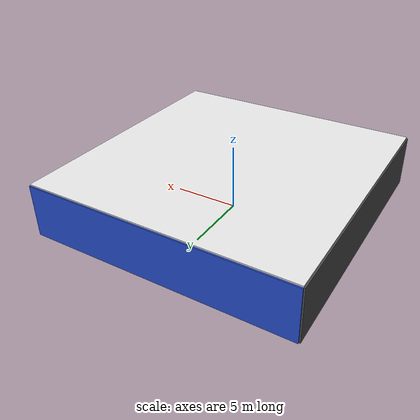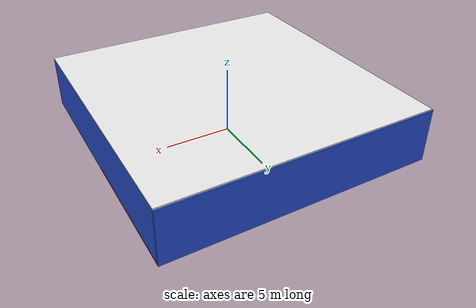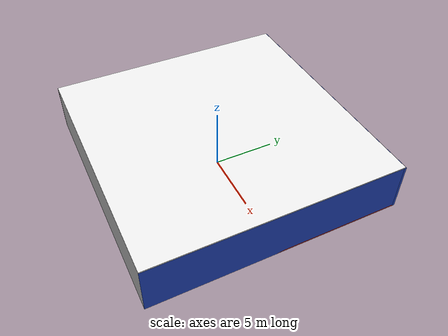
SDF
<sdf version="1.4">
 <world name="default">
  <physics type="ode">
   <max_step_size>0.001</max_step_size>
   <real_time_factor>1</real_time_factor>
   <real_time_update_rate>1000</real_time_update_rate>
   <gravity>0 0 -9.8</gravity>
  </physics>
  <scene><ambient>0.4 0.4 0.4 1</ambient><background>0.7 0.7 0.7 1</background><shadows>1</shadows></scene>
  <model name="Surrounding">
   <static>1</static>
   <link name="Ceiling">
    <collision name="Ceiling_Collision"><geometry><box><size>20 20 0.1</size></box></geometry></collision>
    <visual name="Ceiling_Visual">
     <geometry><box><size>20 20 0.1</size></box></geometry>
     <material>
      <script><uri>file://media/materials/scripts/gazebo.material</uri><name>Gazebo/WhiteGlow</name></script>
     </material>
    </visual>
    <pose>0 0 4.05 0 0 0</pose>
   </link>
   <link name="Wall_South">
    <collision name="Wall_South_Collision">
     <geometry><box><size>20 0 4</size></box></geometry>
     <pose>0 0 2 0 -0 0</pose>
    </collision>
    <visual name="Wall_South_Visual">
     <pose>0 0 2 0 -0 0</pose>
     <geometry><box><size>20 0 4</size></box></geometry>
     <material>
      <script><uri>file://media/materials/scripts/gazebo.material</uri><name>Gazebo/CloudySky</name></script>
     </material>
    </visual>
    <velocity_decay><linear>0</linear><angular>0</angular></velocity_decay>
    <pose>0 -10 0 0 -0 0</pose>
   </link>
   <link name="Wall_East">
    <collision name="Wall_21_Collision">
     <geometry><box><size>20 0 4</size></box></geometry>
     <pose>0 0 2 0 -0 0</pose>
    </collision>
    <visual name="Wall_21_Visual">
     <pose>0 0 2 0 -0 0</pose>
     <geometry><box><size>20 0 4</size></box></geometry>
     <material>
      <script><uri>file://media/materials/scripts/gazebo.material</uri><name>Gazebo/Blue</name></script>
     </material>
    </visual>
    <velocity_decay><linear>0</linear><angular>0</angular></velocity_decay>
    <pose>10 0 0 0 -0 1.5708</pose>
   </link>
   <link name="Wall_North">
    <collision name="Wall_22_Collision">
     <geometry><box><size>20 0.2 4</size></box></geometry>
     <pose>0 0 2 0 -0 0</pose>
    </collision>
    <visual name="Wall_22_Visual">
     <pose>0 0 2 0 -0 0</pose>
     <geometry><box><size>20 0.2 4</size></box></geometry>
     <material>
      <script><uri>file://media/materials/scripts/gazebo.material</uri><name>Gazebo/Blue</name></script>
     </material>
    </visual>
    <velocity_decay><linear>0</linear><angular>0</angular></velocity_decay>
    <pose>0 10 0 0 -0 0</pose>
   </link>
   <link name="Wall_West">
    <collision name="Wall_23_Collision">
     <geometry><box><size>20 0.2 4</size></box></geometry>
     <pose>0 0 2 0 -0 0</pose>
    </collision>
    <visual name="Wall_23_Visual">
     <pose>0 0 2 0 -0 0</pose>
     <geometry><box><size>20 0.2 4</size></box></geometry>
     <material>
      <script><uri>file://media/materials/scripts/gazebo.material</uri><name>Gazebo/Road</name></script>
     </material>
    </visual>
    <velocity_decay><linear>0</linear><angular>0</angular></velocity_decay>
    <pose>-10 0 0 0 0 -1.5708</pose>
   </link>
   <link name="Ground_link">
    <collision name="collision">
     <pose>0 0 .05 0 -0 0</pose>
     <geometry><box><size>20 20 0.1</size></box></geometry>
    </collision>
    <visual name="visual">
     <pose>0 0 .05 0 -0 0</pose>
     <geometry><box><size>20 20 0.1</size></box></geometry>
     <material>
      <script><uri>file://media/materials/scripts/gazebo.material</uri><name>Gazebo/RedBright</name></script>
     </material>
    </visual>
   </link>
   <static>1</static>
  </model>
  <spherical_coordinates>
   <surface_model>EARTH_WGS84</surface_model>
   <latitude_deg>0</latitude_deg>
   <longitude_deg>0</longitude_deg>
   <elevation>0</elevation>
   <heading_deg>0</heading_deg>
  </spherical_coordinates>
  <light name="lightball_0" type="diffuse">
   <diffuse>0.8 0.8 0.8 1</diffuse>
   <specular>0.2 0.2 0.2 1</specular>
   <attenuation>
    <range>100</range>
    <constant>0.7</constant>
    <linear>0.01</linear>
    <quadratic>0.001</quadratic>
   </attenuation>
   <direction>-0.5 0.1 -0.9</direction>
   <pose>-3.99693405494 -4.84539345829 0.552466709526 0 0 0</pose>
  </light>
  <light name="lightball_1" type="diffuse">
   <diffuse>0.8 0.8 0.8 1</diffuse>
   <specular>0.2 0.2 0.2 1</specular>
   <attenuation>
    <range>100</range>
    <constant>0.7</constant>
    <linear>0.01</linear>
    <quadratic>0.001</quadratic>
   </attenuation>
   <direction>-0.5 0.1 -0.9</direction>
   <pose>6.86566617927 9.17961633493 2.6431141255 0 0 0</pose>
  </light>
  <light name="lightball_2" type="diffuse">
   <diffuse>0.8 0.8 0.8 1</diffuse>
   <specular>0.2 0.2 0.2 1</specular>
   <attenuation>
    <range>100</range>
    <constant>0.7</constant>
    <linear>0.01</linear>
    <quadratic>0.001</quadratic>
   </attenuation>
   <direction>-0.5 0.1 -0.9</direction>
   <pose>-0.314899328549 -1.05455505368 1.57880975803 0 0 0</pose>
  </light>
  <light name="lightball_3" type="diffuse">
   <diffuse>0.8 0.8 0.8 1</diffuse>
   <specular>0.2 0.2 0.2 1</specular>
   <attenuation>
    <range>100</range>
    <constant>0.7</constant>
    <linear>0.01</linear>
    <quadratic>0.001</quadratic>
   </attenuation>
   <direction>-0.5 0.1 -0.9</direction>
   <pose>9.1998699381 -9.86850305363 1.36179266694 0 0 0</pose>
  </light>
  <light name="lightball_4" type="diffuse">
   <diffuse>0.8 0.8 0.8 1</diffuse>
   <specular>0.2 0.2 0.2 1</specular>
   <attenuation>
    <range>100</range>
    <constant>0.7</constant>
    <linear>0.01</linear>
    <quadratic>0.001</quadratic>
   </attenuation>
   <direction>-0.5 0.1 -0.9</direction>
   <pose>2.7615441938 2.64069729641 2.78959799678 0 0 0</pose>
  </light>
  <light name="lightball_5" type="diffuse">
   <diffuse>0.8 0.8 0.8 1</diffuse>
   <specular>0.2 0.2 0.2 1</specular>
   <attenuation>
    <range>100</range>
    <constant>0.7</constant>
    <linear>0.01</linear>
    <quadratic>0.001</quadratic>
   </attenuation>
   <direction>-0.5 0.1 -0.9</direction>
   <pose>9.68423747674 9.34819925103 1.14945459488 0 0 0</pose>
  </light>
  <light name="lightball_6" type="diffuse">
   <diffuse>0.8 0.8 0.8 1</diffuse>
   <specular>0.2 0.2 0.2 1</specular>
   <attenuation>
    <range>100</range>
    <constant>0.7</constant>
    <linear>0.01</linear>
    <quadratic>0.001</quadratic>
   </attenuation>
   <direction>-0.5 0.1 -0.9</direction>
   <pose>9.78262979854 -5.45425102719 1.60222609231 0 0 0</pose>
  </light>
  <light name="lightball_7" type="diffuse">
   <diffuse>0.8 0.8 0.8 1</diffuse>
   <specular>0.2 0.2 0.2 1</specular>
   <attenuation>
    <range>100</range>
    <constant>0.7</constant>
    <linear>0.01</linear>
    <quadratic>0.001</quadratic>
   </attenuation>
   <direction>-0.5 0.1 -0.9</direction>
   <pose>9.97380570993 3.48590625243 1.96160671135 0 0 0</pose>
  </light>
  <light name="lightball_8" type="diffuse">
   <diffuse>0.8 0.8 0.8 1</diffuse>
   <specular>0.2 0.2 0.2 1</specular>
   <attenuation>
    <range>100</range>
    <constant>0.7</constant>
    <linear>0.01</linear>
    <quadratic>0.001</quadratic>
   </attenuation>
   <direction>-0.5 0.1 -0.9</direction>
   <pose>6.11073991207 9.57167618406 3.59303687652 0 0 0</pose>
  </light>
  <light name="lightball_9" type="diffuse">
   <diffuse>0.8 0.8 0.8 1</diffuse>
   <specular>0.2 0.2 0.2 1</specular>
   <attenuation>
    <range>100</range>
    <constant>0.7</constant>
    <linear>0.01</linear>
    <quadratic>0.001</quadratic>
   </attenuation>
   <direction>-0.5 0.1 -0.9</direction>
   <pose>8.98401318141 3.16713348478 3.27421314061 0 0 0</pose>
  </light>
  <include><uri>model://table</uri><pose>-6.88036075907 -7.24846764672 0 0 0 1.3565492893</pose></include>
  <include><uri>model://cabinet</uri><pose>-4.21726327584 6.73992940268 0 0 0 1.31748792531</pose></include>
  <include>
   <uri>model://robocup_3Dsim_goal</uri>
   <pose>1.56789176652 4.88908125103 0 0 0 0.215617259556</pose>
  </include>
  <include><uri>model://cabinet</uri><pose>2.05946845794 7.08588621937 0 0 0 1.68864144635</pose></include>
  <include>
   <uri>model://construction_cone</uri>
   <pose>7.49995589955 -0.875197701904 0 0 0 0.390050625607</pose>
  </include>
 </world>
</sdf>

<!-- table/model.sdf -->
<sdf version="1.5">
  <model name="table">
    <static>true</static>
    <link name="link">
      <collision name="surface">
        <pose>0 0 1.0 0 0 0</pose>
        <geometry>
          <box>
            <size>1.5 0.8 0.03</size>
          </box>
        </geometry>
        <surface>
          <friction>
            <ode>
              <mu>0.6</mu>
              <mu2>0.6</mu2>
            </ode>
          </friction>
        </surface>
      </collision>
      <visual name="visual1">
        <pose>0 0 1.0 0 0 0</pose>
        <geometry>
          <box>
            <size>1.5 0.8 0.03</size>
          </box>
        </geometry>
        <material>
          <script>
            <uri>model://media/materials/scripts/gazebo.material</uri>
            <name>Gazebo/Wood</name>
          </script>
        </material>
      </visual>
      <collision name="front_left_leg">
        <pose>0.68 0.38 0.5 0 0 0</pose>
        <geometry>
          <cylinder>
            <radius>0.02</radius>
            <length>1.0</length>
          </cylinder>
        </geometry>
      </collision>
      <visual name="front_left_leg">
        <pose>0.68 0.38 0.5 0 0 0</pose>
        <geometry>
          <cylinder>
            <radius>0.02</radius>
            <length>1.0</length>
          </cylinder>
        </geometry>
        <material>
          <script>
            <uri>model://media/materials/scripts/gazebo.material</uri>
            <name>Gazebo/Grey</name>
          </script>
        </material>
      </visual>
      <collision name="front_right_leg">
        <pose>0.68 -0.38 0.5 0 0 0</pose>
        <geometry>
          <cylinder>
            <radius>0.02</radius>
            <length>1.0</length>
          </cylinder>
        </geometry>
      </collision>
      <visual name="front_right_leg">
        <pose>0.68 -0.38 0.5 0 0 0</pose>
        <geometry>
          <cylinder>
            <radius>0.02</radius>
            <length>1.0</length>
          </cylinder>
        </geometry>
        <material>
          <script>
            <uri>model://media/materials/scripts/gazebo.material</uri>
            <name>Gazebo/Grey</name>
          </script>
        </material>
      </visual>
      <collision name="back_right_leg">
        <pose>-0.68 -0.38 0.5 0 0 0</pose>
        <geometry>
          <cylinder>
            <radius>0.02</radius>
            <length>1.0</length>
          </cylinder>
        </geometry>
      </collision>
      <visual name="back_right_leg">
        <pose>-0.68 -0.38 0.5 0 0 0</pose>
        <geometry>
          <cylinder>
            <radius>0.02</radius>
            <length>1.0</length>
          </cylinder>
        </geometry>
        <material>
          <script>
            <uri>model://media/materials/scripts/gazebo.material</uri>
            <name>Gazebo/Grey</name>
          </script>
        </material>
      </visual>
      <collision name="back_left_leg">
        <pose>-0.68 0.38 0.5 0 0 0</pose>
        <geometry>
          <cylinder>
            <radius>0.02</radius>
            <length>1.0</length>
          </cylinder>
        </geometry>
      </collision>
      <visual name="back_left_leg">
        <pose>-0.68 0.38 0.5 0 0 0</pose>
        <geometry>
          <cylinder>
            <radius>0.02</radius>
            <length>1.0</length>
          </cylinder>
        </geometry>
        <material>
          <script>
            <uri>model://media/materials/scripts/gazebo.material</uri>
            <name>Gazebo/Grey</name>
          </script>
        </material>
      </visual>
    </link>
  </model>
</sdf>

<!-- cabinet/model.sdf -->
<sdf version="1.5">
  <model name="cabinet">
    <static>true</static>
    <link name="cabinet_bottom_plate">
      <inertial>
        <pose>0 0 -1 0 0 0</pose>
        <inertia>
          <ixx>2.050000</ixx>
          <ixy>0</ixy>
          <ixz>0</ixz>
          <iyy>2.050000</iyy>
          <iyz>0</iyz>
          <izz>2.050000</izz>
        </inertia>
        <mass>25.000000</mass>
      </inertial>
      <collision name="cabinet_bottom_plate_geom">
        <pose>0 0 0.010000 0 0 0</pose>
        <geometry>
          <box>
            <size>0.450000 0.450000 0.020000</size>
          </box>
        </geometry>
      </collision>
      <visual name="cabinet_bottom_plate_geom_visual">
        <pose>0 0 0.010000 0 0 0</pose>
        <geometry>
          <box>
            <size>0.450000 0.450000 0.020000</size>
          </box>
        </geometry>
        <material>
          <script>
            <uri>model://media/materials/scripts/gazebo.material</uri>
            <name>Gazebo/Wood</name>
          </script>
        </material>
      </visual>
      <collision name="cabinet_bottom_plate_geom_cabinet_back_plate">
        <pose>0.235000 0 0.510000 0 0 0</pose>
        <geometry>
          <box>
            <size>0.020000 0.450000 1.020000</size>
          </box>
        </geometry>
      </collision>
      <visual name="cabinet_bottom_plate_geom_cabinet_back_plate_visual">
        <pose>0.235000 0 0.510000 0 0 0</pose>
        <geometry>
          <box>
            <size>0.020000 0.450000 1.020000</size>
          </box>
        </geometry>
        <material>
          <script>
            <uri>model://media/materials/scripts/gazebo.material</uri>
            <name>Gazebo/Wood</name>
          </script>
        </material>
      </visual>
      <collision name="cabinet_bottom_plate_geom_cabinet_left_plate">
        <pose>0 0.235000 0.510000 0 0 0</pose>
        <geometry>
          <box>
            <size>0.450000 0.020000 1.020000</size>
          </box>
        </geometry>
      </collision>
      <visual name="cabinet_bottom_plate_geom_cabinet_left_plate_visual">
        <pose>0 0.235000 0.510000 0 0 0</pose>
        <geometry>
          <box>
            <size>0.450000 0.020000 1.020000</size>
          </box>
        </geometry>
        <material>
          <script>
            <uri>model://media/materials/scripts/gazebo.material</uri>
            <name>Gazebo/Wood</name>
          </script>
        </material>
      </visual>
      <collision name="cabinet_bottom_plate_geom_cabinet_middle_plate">
        <pose>0 0 0.510000 0 0 0</pose>
        <geometry>
          <box>
            <size>0.450000 0.450000 0.020000</size>
          </box>
        </geometry>
      </collision>
      <visual name="cabinet_bottom_plate_geom_cabinet_middle_plate_visual">
        <pose>0 0 0.510000 0 0 0</pose>
        <geometry>
          <box>
            <size>0.450000 0.450000 0.020000</size>
          </box>
        </geometry>
        <material>
          <script>
            <uri>model://media/materials/scripts/gazebo.material</uri>
            <name>Gazebo/Wood</name>
          </script>
        </material>
      </visual>
      <collision name="cabinet_bottom_plate_geom_cabinet_right_plate">
        <pose>0 -0.235000 0.510000 0 0 0</pose>
        <geometry>
          <box>
            <size>0.450000 0.020000 1.020000</size>
          </box>
        </geometry>
      </collision>
      <visual name="cabinet_bottom_plate_geom_cabinet_right_plate_visual">
        <pose>0 -0.235000 0.510000 0 0 0</pose>
        <geometry>
          <box>
            <size>0.450000 0.020000 1.020000</size>
          </box>
        </geometry>
        <material>
          <script>
            <uri>model://media/materials/scripts/gazebo.material</uri>
            <name>Gazebo/Wood</name>
          </script>
        </material>
      </visual>
      <collision name="cabinet_bottom_plate_geom_cabinet_top_plate">
        <pose>0 0 1.010000 0 0 0</pose>
        <geometry>
          <box>
            <size>0.450000 0.450000 0.020000</size>
          </box>
        </geometry>
      </collision>
      <visual name="cabinet_bottom_plate_geom_cabinet_top_plate_visual">
        <pose>0 0 1.010000 0 0 0</pose>
        <geometry>
          <box>
            <size>0.450000 0.450000 0.020000</size>
          </box>
        </geometry>
        <material>
          <script>
            <uri>model://media/materials/scripts/gazebo.material</uri>
            <name>Gazebo/Wood</name>
          </script>
        </material>
      </visual>
    </link>
  </model>
</sdf>

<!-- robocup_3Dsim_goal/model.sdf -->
<sdf version="1.5">
  <model name="robocup_3d_goal">
    <static>true</static>
    <link name="left_post">
      <pose>0 1.05 0.45 0 0 0</pose>
      <collision name="collision">
        <geometry>
          <cylinder>
            <radius>0.05</radius>
            <length>0.9</length>
          </cylinder>
        </geometry>
      </collision>
      <visual name="visual">
        <geometry>
          <cylinder>
            <radius>0.05</radius>
            <length>0.9</length>
          </cylinder>
        </geometry>
        <material>
          <script>
            <uri>file://media/materials/scripts/gazebo.material</uri>
            <name>Gazebo/ZincYellow</name>
          </script>
        </material>
      </visual>
    </link>
    <link name="left_support_horiz_lower">
      <pose>0.30 1.05 0.01 0 0 0</pose>
      <collision name="collision">
        <geometry>
          <box>
            <size>0.50 0.02 0.02</size>
          </box>
        </geometry>
      </collision>
      <visual name="visual">
        <geometry>
          <box>
            <size>0.50 0.02 0.02</size>
          </box>
        </geometry>
        <material>
          <script>
            <uri>file://media/materials/scripts/gazebo.material</uri>
            <name>Gazebo/White</name>
          </script>
        </material>
      </visual>
    </link>
    <link name="left_support_horiz_upper">
      <pose>0.30 1.05 0.79 0 0 0</pose>
      <collision name="collision">
        <geometry>
          <box>
            <size>0.50 0.02 0.02</size>
          </box>
        </geometry>
      </collision>
      <visual name="visual">
        <geometry>
          <box>
            <size>0.50 0.02 0.02</size>
          </box>
        </geometry>
        <material>
          <script>
            <uri>file://media/materials/scripts/gazebo.material</uri>
            <name>Gazebo/White</name>
          </script>
        </material>
      </visual>
    </link>
    <link name="left_support_vertical">
      <pose>0.56 1.05 0.4 0 1.5708 0</pose>
      <collision name="collision">
        <geometry>
          <box>
            <size>0.80 0.02 0.02</size>
          </box>
        </geometry>
      </collision>
      <visual name="visual">
        <geometry>
          <box>
            <size>0.80 0.02 0.02</size>
          </box>
        </geometry>
        <material>
          <script>
            <uri>file://media/materials/scripts/gazebo.material</uri>
            <name>Gazebo/White</name>
          </script>
        </material>
      </visual>
    </link>
    <link name="right_support_horiz_lower">
      <pose>0.30 -1.05 0.01 0 0 0</pose>
      <collision name="collision">
        <geometry>
          <box>
            <size>0.50 0.02 0.02</size>
          </box>
        </geometry>
      </collision>
      <visual name="visual">
        <geometry>
          <box>
            <size>0.50 0.02 0.02</size>
          </box>
        </geometry>
        <material>
          <script>
            <uri>file://media/materials/scripts/gazebo.material</uri>
            <name>Gazebo/White</name>
          </script>
        </material>
      </visual>
    </link>
    <link name="right_support_horiz_upper">
      <pose>0.30 -1.05 0.79 0 0 0</pose>
      <collision name="collision">
        <geometry>
          <box>
            <size>0.50 0.02 0.02</size>
          </box>
        </geometry>
      </collision>
      <visual name="visual">
        <geometry>
          <box>
            <size>0.50 0.02 0.02</size>
          </box>
        </geometry>
        <material>
          <script>
            <uri>file://media/materials/scripts/gazebo.material</uri>
            <name>Gazebo/White</name>
          </script>
        </material>
      </visual>
    </link>
    <link name="right_support_vertical">
      <pose>0.56 -1.05 0.4 0 1.5708 0</pose>
      <collision name="collision">
        <geometry>
          <box>
            <size>0.80 0.02 0.02</size>
          </box>
        </geometry>
      </collision>
      <visual name="visual">
        <geometry>
          <box>
            <size>0.80 0.02 0.02</size>
          </box>
        </geometry>
        <material>
          <script>
            <uri>file://media/materials/scripts/gazebo.material</uri>
            <name>Gazebo/White</name>
          </script>
        </material>
      </visual>
    </link>
    <link name="center_support_horiz_lower">
      <pose>0.56 0 0.01 0 1.5708 0</pose>
      <collision name="collision">
        <geometry>
          <box>
            <size>0.02 2.08 0.02</size>
          </box>
        </geometry>
      </collision>
      <visual name="visual">
        <geometry>
          <box>
            <size>0.02 2.08 0.02</size>
          </box>
        </geometry>
        <material>
          <script>
            <uri>file://media/materials/scripts/gazebo.material</uri>
            <name>Gazebo/White</name>
          </script>
        </material>
      </visual>
    </link>
    <link name="center_support_horiz_upper">
      <pose>0.56 0 0.79 0 1.5708 0</pose>
      <collision name="collision">
        <geometry>
          <box>
            <size>0.02 2.08 0.02</size>
          </box>
        </geometry>
      </collision>
      <visual name="visual">
        <geometry>
          <box>
            <size>0.02 2.08 0.02</size>
          </box>
        </geometry>
        <material>
          <script>
            <uri>file://media/materials/scripts/gazebo.material</uri>
            <name>Gazebo/White</name>
          </script>
        </material>
      </visual>
    </link>
    <link name="right_post">
      <pose>0 -1.05 0.45 0 0 0</pose>
      <collision name="collision">
        <geometry>
          <cylinder>
            <radius>0.05</radius>
            <length>0.9</length>
          </cylinder>
        </geometry>
      </collision>
      <visual name="visual">
        <geometry>
          <cylinder>
            <radius>0.05</radius>
            <length>0.9</length>
          </cylinder>
        </geometry>
        <material>
          <script>
            <uri>file://media/materials/scripts/gazebo.material</uri>
            <name>Gazebo/ZincYellow</name>
          </script>
        </material>
      </visual>
    </link>
    <link name="crossbar">
      <pose>0 0 0.85 1.57 1.57 0</pose>
      <collision name="collision">
        <geometry>
          <cylinder>
            <radius>0.05</radius>
            <length>2.0</length>
          </cylinder>
        </geometry>
      </collision>
      <visual name="visual">
        <geometry>
          <cylinder>
            <radius>0.05</radius>
            <length>2.0</length>
          </cylinder>
        </geometry>
        <material>
          <script>
            <uri>file://media/materials/scripts/gazebo.material</uri>
            <name>Gazebo/ZincYellow</name>
          </script>
        </material>
      </visual>
    </link>
    <link name="center_net">
      <pose>0.56 0 0.40 0 0 0</pose>
      <collision name="collision">
        <geometry>
          <box>
            <size>0.01 2.1 0.80</size>
          </box>
        </geometry>
      </collision>
      <visual name="visual">
        <geometry>
          <box>
            <size>0.01 2.1 0.80</size>
          </box>
        </geometry>
        <material>
          <script>
            <uri>model://../model_source/models/robocup09_spl_field/materials/scripts/</uri>
            <uri>model://../model_source/models/robocup09_spl_field/materials/textures/</uri>
            <name>RoboCup/Net</name>
          </script>
        </material>
      </visual>
    </link>
    <link name="left_net">
      <pose>0.30 1.05 0.40 0 0 0</pose>
      <collision name="collision">
        <geometry>
          <box>
            <size>0.50 0.01 0.76</size>
          </box>
        </geometry>
      </collision>
      <visual name="visual">
        <geometry>
          <box>
            <size>0.50 0.01 0.76</size>
          </box>
        </geometry>
        <material>
          <script>
            <uri>model://../model_source/models/robocup09_spl_field/materials/scripts/</uri>
            <uri>model://../model_source/models/robocup09_spl_field/materials/textures/</uri>
            <name>RoboCup/Net</name>
          </script>
        </material>
      </visual>
    </link>
    <link name="right_net">
      <pose>0.30 -1.05 0.40 0 0 0</pose>
      <collision name="collision">
        <geometry>
          <box>
            <size>0.50 0.01 0.76</size>
          </box>
        </geometry>
      </collision>
      <visual name="visual">
        <geometry>
          <box>
            <size>0.50 0.01 0.76</size>
          </box>
        </geometry>
        <material>
          <script>
            <uri>model://../model_source/models/robocup09_spl_field/materials/scripts/</uri>
            <uri>model://../model_source/models/robocup09_spl_field/materials/textures/</uri>
            <name>RoboCup/Net</name>
          </script>
        </material>
      </visual>
    </link>
  </model>
</sdf>

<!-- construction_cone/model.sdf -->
<sdf version="1.5">
  <model name="Construction Cone">
    <link name="link">
      <collision name="collision">
        <geometry>
          <mesh>
            <scale>10 10 10</scale>
            <uri>file://isr-testbed/construction_cone/meshes/construction_cone.dae</uri>
          </mesh>
        </geometry>
      </collision>
      <visual name="visual">
        <geometry>
          <mesh>
            <scale>10 10 10</scale>
            <uri>file://isr-testbed/construction_cone/meshes/construction_cone.dae</uri>
          </mesh>
        </geometry>
      </visual>
    </link>
  </model>
</sdf>
